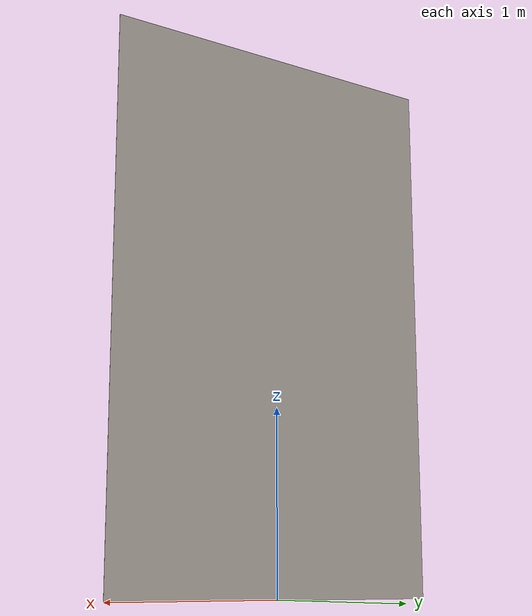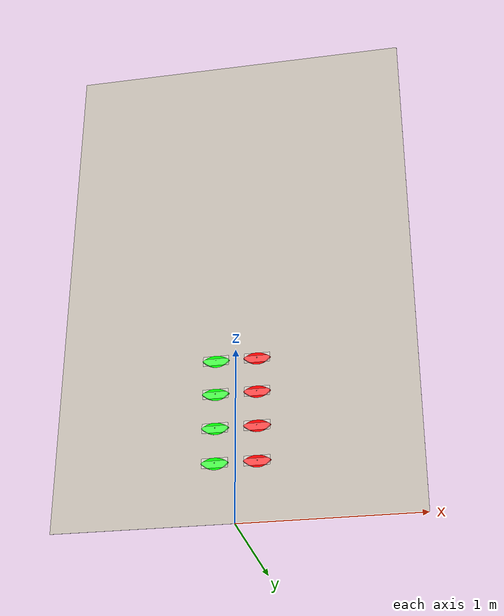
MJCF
<mujoco model="wall">
  <statistic center="0 0 0.2" extent="0.05"/>

  <asset>
    <texture name="wall" file="assets/wall/wall_color.png" type="2d"/>
    <material name="wall" texture="wall" texuniform="true"/>
    <mesh name="hold" file="assets\wall\Hold_Screw_V1_Rework.STL" scale="0.001 0.001 0.001"/>
  </asset>

  <worldbody>
    <geom name="wall" size="1 1.5 0.1" type="plane" material="wall" pos="0.0 0.0 1.5" quat="0.70710678 0.70710678 0.0 0.0" contype="2" conaffinity="2" condim="3"/>
    <body name="hold1" pos="0.045 0 0.3" quat="0.7071 0 0 -0.7071">
      <geom type="mesh" mesh="hold" rgba="1 0 0 1" contype="0" conaffinity="0"/>
      <body name="hold1c" pos="0.016 0.075 0.034">
        <geom type="box" size="0.0025 0.071 0.027" rgba="1 1 1 0.3" contype="2" conaffinity="2" condim="3"/>
      </body>
    </body>
    <body name="hold2" pos="-0.185 0 0.3" quat="0.7071 0 0 -0.7071">
      <geom type="mesh" mesh="hold" rgba="0 1 0 1" contype="0" conaffinity="0"/>
      <body name="hold2c" pos="0.016 0.075 0.034">
        <geom type="box" size="0.0025 0.071 0.027" rgba="1 1 1 0.3" contype="2" conaffinity="2" condim="3"/>
      </body>
    </body>
    <body name="hold3" pos="0.045 0 0.5" quat="0.7071 0 0 -0.7071">
      <geom type="mesh" mesh="hold" rgba="1 0 0 1" contype="0" conaffinity="0"/>
      <body name="hold3c" pos="0.016 0.075 0.034">
        <geom type="box" size="0.0025 0.071 0.027" rgba="1 1 1 0.3" contype="2" conaffinity="2" condim="3"/>
      </body>
    </body>
    <body name="hold4" pos="-0.185 0 0.5" quat="0.7071 0 0 -0.7071">
      <geom type="mesh" mesh="hold" rgba="0 1 0 1" contype="0" conaffinity="0"/>
      <body name="hold4c" pos="0.016 0.075 0.034">
        <geom type="box" size="0.0025 0.071 0.027" rgba="1 1 1 0.3" contype="2" conaffinity="2" condim="3"/>
      </body>
    </body>
    <body name="hold5" pos="0.045 0 0.7" quat="0.7071 0 0 -0.7071">
      <geom type="mesh" mesh="hold" rgba="1 0 0 1" contype="0" conaffinity="0"/>
      <body name="hold5c" pos="0.016 0.075 0.034">
        <geom type="box" size="0.0025 0.071 0.027" rgba="1 1 1 0.3" contype="2" conaffinity="2" condim="3"/>
      </body>
    </body>
    <body name="hold6" pos="-0.185 0 0.7" quat="0.7071 0 0 -0.7071">
      <geom type="mesh" mesh="hold" rgba="0 1 0 1" contype="0" conaffinity="0"/>
      <body name="hold6c" pos="0.016 0.075 0.034">
        <geom type="box" size="0.0025 0.071 0.027" rgba="1 1 1 0.3" contype="2" conaffinity="2" condim="3"/>
      </body>
    </body>
    <body name="hold7" pos="0.045 0 0.9" quat="0.7071 0 0 -0.7071">
      <geom type="mesh" mesh="hold" rgba="1 0 0 1" contype="0" conaffinity="0"/>
      <body name="hold7c" pos="0.016 0.075 0.034">
        <geom type="box" size="0.0025 0.071 0.027" rgba="1 1 1 0.3" contype="2" conaffinity="2" condim="3"/>
      </body>
    </body>
    <body name="hold8" pos="-0.185 0 0.9" quat="0.7071 0 0 -0.7071">
      <geom type="mesh" mesh="hold" rgba="0 1 0 1" contype="0" conaffinity="0"/>
      <body name="hold8c" pos="0.016 0.075 0.034">
        <geom type="box" size="0.0025 0.071 0.027" rgba="1 1 1 0.3" contype="2" conaffinity="2" condim="3"/>
      </body>
    </body>
  </worldbody>
</mujoco>
